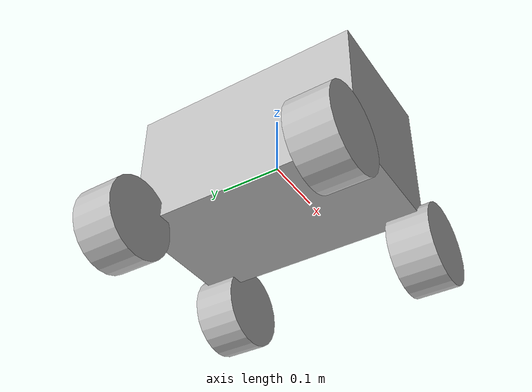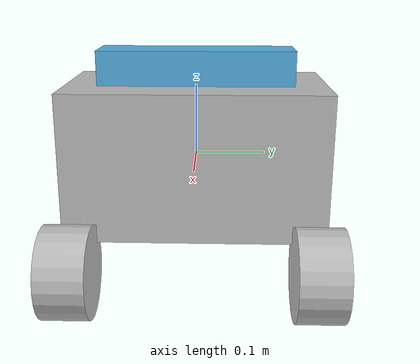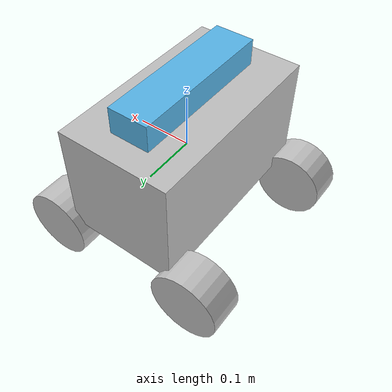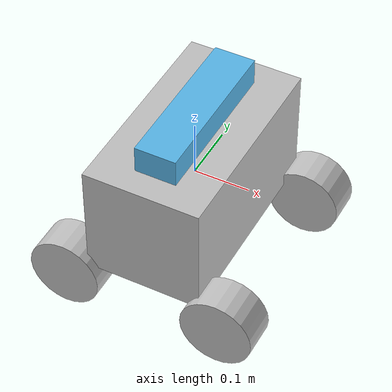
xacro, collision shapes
<?xml version="1.0" encoding="utf-8"?>
<robot xmlns:xacro="http://www.ros.org/wiki/xacro"
       name="leo_description">

  <xacro:arg name="robot_namespace" default=""/>

 <!-- Values Based on AMALIA Rover (Team ITALIA) -->
 <!-- Import others xacro proprieties -->
  <xacro:include filename="$(find leo_description)/urdf/materials.xacro" />
  <xacro:include filename="$(find leo_description)/urdf/simulation_parameters.xacro" />
  <xacro:include filename="$(find leo_description)/urdf/head.xacro" />

  <!-- Base_footprint = dummy link to avoid problems with Rviz because of Inerzia in the base link-->
  <link name="base_footprint"/>

  <joint name="base_joint" type="fixed">
    <parent link="base_footprint"/>
    <child link="base_link"/>
    <origin xyz="0.0 0.0 0.0" rpy="0 0 0"/>
  </joint>

  <link name="base_link">
    <visual>
      <origin xyz="0 0 0" rpy="0 0 0" />
      <geometry>
        <mesh filename="package://leo_description/meshes/base_link.STL"/>
      </geometry>
      <material name="base">
        <color rgba="0.752941176470588 0.752941176470588 0.752941176470588 1"/>
      </material>
    </visual>
    <collision>
      <origin xyz="0 0 0" rpy="0 0 0"/>
      <geometry>
        <box size="${body_length} ${body_width} ${body_height}"/>
      </geometry>
    </collision>
    <inertial>
      <mass value="${body_mass}"/>
      <inertia ixx="${body_mass*(body_width*body_width+body_height*body_height)/12}"
               ixy="0.0"
               ixz="0.0"
               iyy="${body_mass*(body_length*body_length+body_height*body_height)/12}"
               iyz="0.0"
               izz="${body_mass*(body_length*body_length+body_width*body_width)/12}" /> <!-- kg*m^4 -->
    </inertial>
  </link>

  <!--Wheels Xacro Macro-->
  <xacro:macro name="wheel_link" params="name model origin_x origin_y origin_z ">

  <joint name="wheel_${name}_joint" type="continuous">
    <origin xyz="${origin_x} ${origin_y} ${origin_z}" rpy="${pi/2} 0 0"/>
    <parent link="base_link"/>
    <child link="wheel_${name}_link"/>
    <axis xyz="0 0 -1"/>
  </joint>

    <link name="wheel_${name}_link">
      <visual>
        <origin xyz="0 0 0" rpy="0 0 0"/>
        <geometry>
          <mesh filename="package://leo_description/meshes/wheel_${model}.STL"/>
        </geometry>
        <material name="wheel">
          <color rgba="0.752941176470588 0.752941176470588 0.752941176470588 1"/>
        </material>
      </visual>
      <collision>
        <origin xyz="0 0 0" rpy="0 0 0"/>
        <geometry>
          <cylinder length="${wheel_width}" radius="${wheel_radius}"/>
        </geometry>
      </collision>
     <inertial>
      <mass value="${wheel_mass}" />                              <!-- kg -->
      <inertia ixx="${wheel_mass*(wheel_width*wheel_width+3*wheel_radius*wheel_radius)/12}"
               ixy="0.0"
               ixz="0.0"
               iyy="${wheel_mass*(wheel_width*wheel_width+3*wheel_radius*wheel_radius)/12}"
               iyz="0.0"
               izz="${wheel_mass*(wheel_radius*wheel_radius)/2}" /> <!-- kg*m^4 -->
    </inertial>
    </link>
  </xacro:macro>

  <xacro:wheel_link name="FL" model="left" origin_x="${origin_x}" origin_y="${origin_y}" origin_z="${-origin_z}" />
  <xacro:wheel_link name="FR" model="right" origin_x="${origin_x}" origin_y="${-origin_y}" origin_z="${-origin_z}"/>
  <xacro:wheel_link name="RL" model="left" origin_x="${-origin_x}" origin_y="${origin_y}" origin_z="${-origin_z}"/>
  <xacro:wheel_link name="RR" model="right" origin_x="${-origin_x}" origin_y="${-origin_y}" origin_z="${-origin_z}"/>

  <!--Camera Links-->

    <!-- Attach the head -->
    <leo_head parent="base_link" color="OffWhite">
      <origin xyz="${camera_link_x_origin} ${camera_link_y_origin} ${camera_link_z_origin}"/>
    </leo_head>
   <!-- linked to the base link -->

  <!--IMU Link-->

  <link name="imu_link"/>

  <joint name="imu_joint" type="fixed">
    <parent link="base_link"/>
    <child link="imu_link"/>
    <origin xyz="${imu_x_position} ${imu_y_position} ${imu_z_position}" rpy="0 0 0"/>
  </joint>

  <!--Scanner Link-->

     <!-- kg -->
      <!-- kg*m^4 -->

<!--Gazebo-->
  <gazebo>
    <plugin name="gazebo_ros_control" filename="libgazebo_ros_control.so">
      <legacyModeNS>true</legacyModeNS>
    </plugin>
  </gazebo>

<gazebo reference="base_link">
    <material>Gazebo/Red</material>
  </gazebo>

  <gazebo reference="camera_link">
    <material>Gazebo/Black</material>
  </gazebo>

   <gazebo reference="kinect_link">
    <sensor type="depth" name="openni_camera_camera">
      <always_on>1</always_on>
      <visualize>true</visualize>

      <camera>
        <horizontal_fov>${horizontal_fov}</horizontal_fov>
        <image>
          <width>${image_width}</width>
          <height>${image_height}</height>
          <format>${image_format}</format>
        </image>
        <depth_camera>

        </depth_camera>
        <clip>
          <near>${camera_clip_near}</near>
          <far>${camera_clip_far}</far>
        </clip>
      </camera>

      <plugin name="camera_plugin" filename="libgazebo_ros_openni_kinect.so">
        <alwaysOn>true</alwaysOn>
        <updateRate>${camera_update_rate}</updateRate>
        <cameraName>camera</cameraName>
        <frameName>kinect_depth_optical_frame</frameName>
        <imageTopicName>/camera/rgb/image_raw</imageTopicName>
        <cameraInfoTopicName>/camera/rgb/camera_info</cameraInfoTopicName>
        <depthImageTopicName>/camera/depth/image_raw</depthImageTopicName>
        <depthImageCameraInfoTopicName>/camera/depth/camera_info</depthImageCameraInfoTopicName>
        <pointCloudTopicName>/camera/depth/points</pointCloudTopicName>
        <pointCloudCutoff>${point_cloud_cut_off}</pointCloudCutoff>
        <hackBaseline>${hack_baseline}</hackBaseline>
        <distortionK1>0.0</distortionK1>
        <distortionK2>0.0</distortionK2>
        <distortionK3>0.0</distortionK3>
        <distortionT1>0.0</distortionT1>
        <distortionT2>0.0</distortionT2>
        <CxPrime>0.0</CxPrime>
        <Cx>0.0</Cx>
        <Cy>0.0</Cy>
        <focalLength>0.0</focalLength>
      </plugin>
    </sensor>
  </gazebo>

 <gazebo reference="imu_link">
   <gravity>true</gravity>
    <sensor name="imu_sensor" type="imu">
      <always_on>true</always_on>
      <update_rate>50</update_rate>
      <visualize>true</visualize>
      <topic>imu/data</topic>
      <plugin filename="libgazebo_ros_imu_sensor.so" name="imu_plugin">
        <topicName>imu/data</topicName>
        <bodyName>imu_link</bodyName>
        <updateRateHZ>10.0</updateRateHZ>
        <gaussianNoise>0.0</gaussianNoise>
        <xyzOffset>0 0 0</xyzOffset>
        <rpyOffset>0 0 0</rpyOffset>
        <frameName>imu_link</frameName>
      </plugin>
      <pose>0 0 0 0 0 0</pose>
    </sensor>
  </gazebo>

  <gazebo>
    <plugin name="skid_steer_drive_controller" filename="libgazebo_ros_skid_steer_drive.so">
      <updateRate>50</updateRate>
      <odometryTopic>odom</odometryTopic>
      <odometryFrame>odom</odometryFrame>
      <odometrySource>world</odometrySource>
      <publishOdomTF>true</publishOdomTF>
      <robotBaseFrame>base_footprint</robotBaseFrame>
      <publishWheelTF>true</publishWheelTF>
      <publishTf>true</publishTf>
      <publishWheelJointState>true</publishWheelJointState>
      <wheelSeparation>0.182</wheelSeparation>
      <wheelDiameter>0.064905</wheelDiameter>
      <torque>10</torque>
      <leftFrontJoint>wheel_FL_joint</leftFrontJoint>
      <rightFrontJoint>wheel_FR_joint</rightFrontJoint>
      <leftRearJoint>wheel_RL_joint</leftRearJoint>
      <rightRearJoint>wheel_RR_joint</rightRearJoint>
      <topicName>cmd_vel</topicName>
      <commandTopic>cmd_vel</commandTopic>
      <broadcastTF>true</broadcastTF>
      <covariance_x>0.000100</covariance_x>
      <covariance_y>0.000100</covariance_y>
      <covariance_yaw>0.010000</covariance_yaw>
    </plugin>
  </gazebo>

<!--Gazebo Transmissions in head actuators-->

  <transmission name="trasmission_head_pan_link">
    <type>transmission_interface/SimpleTransmission</type>
    <joint name="head_pan_joint">
      <hardwareInterface>hardware_interface/EffortJointInterface</hardwareInterface>
    </joint>
    <actuator name="motor_head_pan_link">
      <hardwareInterface>hardware_interface/EffortJointInterface</hardwareInterface>
      <mechanicalReduction>1</mechanicalReduction>
    </actuator>
  </transmission>

  <transmission name="trasmission_head_tilt_link">
    <type>transmission_interface/SimpleTransmission</type>
    <joint name="head_tilt_joint">
      <hardwareInterface>hardware_interface/EffortJointInterface</hardwareInterface>
    </joint>
    <actuator name="motor_head_tilt_link">
      <hardwareInterface>hardware_interface/EffortJointInterface</hardwareInterface>
      <mechanicalReduction>1</mechanicalReduction>
    </actuator>
  </transmission>

<!--Gazebo Transmissions in Wheels-->

  <gazebo reference="wheel_FL_link">
    <mu1>1</mu1>
    <mu2>1</mu2>
    <kp>10000000.0</kp>
    <kd>1.0</kd>
    <fdir1>1 0 0</fdir1>
    <material>Gazebo/Black</material>
  </gazebo>

  <gazebo reference="wheel_FR_link">
    <mu1>1</mu1>
    <mu2>1</mu2>
    <kp>10000000.0</kp>
    <kd>1.0</kd>
    <fdir1>1 0 0</fdir1>
    <material>Gazebo/Black</material>
  </gazebo>

  <gazebo reference="wheel_RL_link">
    <mu1>1</mu1>
    <mu2>1</mu2>
    <kp>10000000.0</kp>
    <kd>1.0</kd>
    <fdir1>1 0 0</fdir1>
    <material>Gazebo/Black</material>
  </gazebo>

  <gazebo reference="wheel_RR_link">
    <mu1>1</mu1>
    <mu2>1</mu2>
    <kp>10000000.0</kp>
    <kd>1.0</kd>
    <fdir1>1 0 0</fdir1>
    <material>Gazebo/Black</material>
  </gazebo>

<transmission name="trasmission_wheel_FL_link" type="SimpleTransmission">
  <type>transmission_interface/SimpleTransmission</type>
	<actuator name="FL_wheel_motor">
		<mechanicalReduction>1</mechanicalReduction>
	</actuator>
        <joint name="wheel_FL_joint">
	        <hardwareInterface>hardware_interface/VelocityJointInterface</hardwareInterface>
	</joint>
</transmission>

<transmission name="trasmission_wheel_FR_link" type="SimpleTransmission">
  <type>transmission_interface/SimpleTransmission</type>
	<actuator name="FL_wheel_motor">
		<mechanicalReduction>1</mechanicalReduction>
	</actuator>
        <joint name="wheel_FR_joint">
	        <hardwareInterface>hardware_interface/VelocityJointInterface</hardwareInterface>
	</joint>
</transmission>

<transmission name="trasmission_wheel_RL_link" type="SimpleTransmission">
  <type>transmission_interface/SimpleTransmission</type>
	<actuator name="FL_wheel_motor">
		<mechanicalReduction>1</mechanicalReduction>
	</actuator>
        <joint name="wheel_RL_joint">
	        <hardwareInterface>hardware_interface/VelocityJointInterface</hardwareInterface>
	</joint>
</transmission>

<transmission name="trasmission_wheel_RR_link" type="SimpleTransmission">
  <type>transmission_interface/SimpleTransmission</type>
	<actuator name="FL_wheel_motor">
		<mechanicalReduction>1</mechanicalReduction>
	</actuator>
        <joint name="wheel_RR_joint">
	        <hardwareInterface>hardware_interface/VelocityJointInterface</hardwareInterface>
	</joint>
</transmission>

</robot>

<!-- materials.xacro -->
<!-- Material Color by xacro file-->
<robot>

  <material name="OffWhite">
    <color rgba="0.8 0.8 0.8 0.9"/>
  </material>

  <material name="black">
    <color rgba="0.0 0.0 0.0 1.0"/>
  </material>

  <material name="blue">
    <color rgba="0.0 0.0 0.8 1.0"/>
  </material>

  <material name="green">
    <color rgba="0.0 0.8 0.0 1.0"/>
  </material>

  <material name="gray">
    <color rgba="0.7 0.7 0.7 1.0"/>
  </material>

  <material name="darkgray">
    <color rgba="0.3 0.3 0.3 1.0"/>
  </material>

  <material name="red">
    <color rgba="0.8 0.0 0.0 1.0"/>
  </material>

  <material name="white">
    <color rgba="1.0 1.0 1.0 1.0"/>
  </material>

  <material name="yellow">
    <color rgba="0.8 0.8 0.0 1.0"/>
  </material>

</robot>

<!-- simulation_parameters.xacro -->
<robot xmlns:xacro="http://www.ros.org/wiki/xacro"
       name="parameter_file">

<!-- Simulation Parameters-->

  <xacro:property name="M_PI" value="3.14159"/>
  <xacro:property name="M_SCALE" value="0.001"/>
  <xacro:property name="F10_HEIGHT" value="0.004"/>
  <xacro:property name="F4_HEIGHT" value="0.0525"/>
  <xacro:property name="F3_HEIGHT" value="0.009"/>
  <xacro:property name="AX12_HEIGHT" value="0.0385"/>
  <xacro:property name="AX12_WIDTH" value="0.038"/>
  <xacro:property name="F2_HEIGHT" value="0.0265"/>
  <xacro:property name="MESH_EXT" value="dae"/>
  <xacro:property name="MESH_SCALE" value="0.001"/>

  <!-- Wheel Mounting Positions -->
  <xacro:property name="wheelbase" value="${0.14211*2}" />
  <xacro:property name="wheel_vertical_offset" value="${0.13136*2}" />
  <xacro:property name="track" value="${0.16833*2}" />
  <xacro:property name="wheel_radius" value="0.064905" />
  <xacro:property name="wheel_width" value="0.06634" />
  <xacro:property name="origin_x" value="0.14211" />
  <xacro:property name="origin_y" value="0.16833" />
  <xacro:property name="origin_z" value="0.13136" />

   <!-- LEO Body Dimensions [blender units] (z,y,x)-->
  <xacro:property name="body_height" value="0.20733" />
  <xacro:property name="body_width" value="0.36934" />
  <xacro:property name="body_length" value="0.20733" />

  <!-- LEO Body Dimensions [blender units] (z,y,x)-->
  <xacro:property name="body_mass" value="26" />   <!-- kg -->
  <xacro:property name="wheel_mass" value="1.4" />   <!-- kg -->

  <!-- Lidar mass and dimensions-->
  <xacro:property name="lidar_mass" value="0.190" />   <!-- kg -->
  <xacro:property name="lidar_width" value="0.020" />
  <xacro:property name="lidar_radius" value="0.035" />
  <xacro:property name="lidar_x_position" value="0.08" />
  <xacro:property name="lidar_y_position" value="0.00" />
  <xacro:property name="lidar_z_position" value="0.00" />

  <!-- Depth Camera Position, mass and dimensions-->
  <xacro:property name="camera_link_x_origin" value="0.015" />
  <xacro:property name="camera_link_y_origin" value="0.0" />
  <xacro:property name="camera_link_z_origin" value="0.0" />
  <!-- Gazebo plugins parameters-->
  <xacro:property name="horizontal_fov" value="1.047" />   <!-- rad -->
  <xacro:property name="image_format" value="R8G8B8" />
  <xacro:property name="image_width" value="640" />
  <xacro:property name="image_height" value="480" />
  <xacro:property name="camera_clip_near" value="0.1" />
  <xacro:property name="camera_clip_far" value="100" />
  <xacro:property name="camera_update_rate" value="50" />   <!-- m // WARNING: THIS VALUE MUST BE THE SAME OF THE ONES CALLED IN THE LAUNCH FILES-->
  <xacro:property name="point_cloud_cut_off" value="0.4" />
  <xacro:property name="hack_baseline" value="0.07" />

  <!-- Imu Position, mass and dimensions-->
  <xacro:property name="imu_x_position" value="0.00" />
  <xacro:property name="imu_y_position" value="0.00" />
  <xacro:property name="imu_z_position" value="0.00" />

</robot>

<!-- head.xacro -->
<robot xmlns:xacro="http://www.ros.org/wiki/xacro"
       name="head_description">

  <xacro:include filename="$(find leo_description)/urdf/head_hardware.xacro" />

  <xacro:macro name="leo_head" params="parent color *origin">
   <!-- linked to the base link -->
    <link name="head_base_link" />
    <joint name="head_base_joint" type="fixed">
      <insert_block name="origin" />
      <parent link="${parent}"/>
      <child link="head_base_link" />
    </joint>

    <!-- fake head_pan_link joint -->
    <link name="head_pan_link">
      <inertial>
        <mass value="0.0001" />
        <origin xyz="0 0 0" />
        <inertia ixx="1.0" ixy="0.0" ixz="0.0"
          iyy="1.0" iyz="0.0"
          izz="1.0" />
      </inertial>

      <visual>
        <origin xyz=" 0 0 0 " rpy="0 0 0" />
        <geometry>
          <mesh filename="package://leo_description/meshes/ax12_box.${MESH_EXT}" scale="${M_SCALE} ${M_SCALE} ${M_SCALE}"/>
        </geometry>
        <material name="${color}"/>
      </visual>

      <collision>
        <origin xyz="0.0 0.0 0" rpy="0 0 0" />
        <geometry>
          <box size="0.025 0.038 0.009"/>
        </geometry>
      </collision>
    </link>

    <joint name="head_pan_joint" type="revolute">
      <origin xyz="0 0 0" rpy="0 ${M_PI} 0" />
      <parent link="${parent}"/>
      <axis xyz="0 0 -1"/>
      <limit effort="10" velocity="0.5" lower="${-60*M_PI/180}" upper="${60*M_PI/180}" />
      <child link="head_pan_link" />
    </joint>

     <!-- fake head_tilt_link joint -->
    <link name="head_tilt_link">
      <inertial>
        <mass value="0.00001" />
        <origin xyz="0 0 0" />
        <inertia ixx="1.0" ixy="0.0" ixz="0.0"
          iyy="1.0" iyz="0.0"
          izz="1.0" />
      </inertial>

      <visual>
        <origin xyz=" 0 0 0" rpy="0 0 0" />
        <geometry>
          <mesh filename="package://leo_description/meshes/ax12_box.${MESH_EXT}" scale="${M_SCALE} ${M_SCALE} ${M_SCALE}"/>
        </geometry>
        <material name="${color}"/>
      </visual>

      <collision>
        <origin xyz="0.0 0.0 0" rpy="0 0 0" />
        <geometry>
          <box size="0.028 0.0485 0.065"/>
        </geometry>
      </collision>
    </link>

    <joint name="head_tilt_joint" type="revolute">
      <origin xyz="0 0 ${-0.038-0.001} " rpy="0 0 0" />
      <parent link="head_pan_link"/>
      <axis xyz="0 -1 0"/>
      <limit effort="10" velocity="0.5" lower="${-20*M_PI/180}" upper="0" />
      <child link="head_tilt_link" />
    </joint>

	<!-- head base plate (needed for collision awareness) -->
	<!--arm_head_base_plate parent="base_link" number="1" x_loc="-0.027" y_loc="-0.0175" z_loc="0.075" color="${color}"/-->

    <!-- head pan joint: Joint of the mast -->

    <!--head tilt joint: Joint of the head -->

    <joint name="base_kinect_joint" type="fixed">
      <origin xyz="-0.03 0 ${-2*0.038-0.001} " rpy="0 ${M_PI} 0" />
      <parent link="head_tilt_link" />
      <child link="kinect_link" />
    </joint>

    <link name="kinect_link">
      <inertial>
        <mass value="0.000001" />
        <origin xyz="0 0 0 " />
        <inertia ixx="0.010" ixy="0.0" ixz="0.0"
          iyy="0.010" iyz="0.0"
          izz="0.010" />
      </inertial>

      <visual>
        <origin xyz="0 0 0 " rpy="0 0 0" />
        <geometry>
          <mesh filename="package://leo_description/meshes/kinect.dae" scale="${MESH_SCALE} ${MESH_SCALE} ${MESH_SCALE}"/>
        </geometry>
      </visual>

      <collision>
        <origin xyz="-0.0275 0.0 0.0" rpy="0 0 0" />
        <geometry>
          <box size="0.0730 .2760 0.0720"/>
        </geometry>
      </collision>
    </link>

  <joint name="kinect_depth_joint" type="fixed">
    <origin xyz="0 0.018 0" rpy="0 0 0" />
    <parent link="kinect_link" />
    <child link="kinect_depth_frame" />
  </joint>

  <link name="kinect_depth_frame">
    <inertial>
      <mass value="0.0000001" />
      <origin xyz="0 0 0" />
      <inertia ixx="0.0001" ixy="0.0" ixz="0.0"
        iyy="0.0001" iyz="0.0"
        izz="0.0001" />
    </inertial>
  </link>

  <joint name="kinect_depth_optical_joint" type="fixed">
    <origin xyz="0 0 0" rpy="${-M_PI/2} 0 ${-M_PI/2}" />
    <parent link="kinect_depth_frame" />
    <child link="kinect_depth_optical_frame" />
  </joint>

  <link name="kinect_depth_optical_frame">
    <inertial>
      <mass value="0.0000001" />
      <origin xyz="0 0 0" />
      <inertia ixx="0.0001" ixy="0.0" ixz="0.0"
        iyy="0.0001" iyz="0.0"
        izz="0.0001" />
    </inertial>
  </link>

  <joint name="kinect_rgb_joint" type="fixed">
    <origin xyz="0 -0.005 0" rpy="0 0 0" />
    <parent link="kinect_link" />
    <child link="kinect_rgb_frame" />
  </joint>

  <link name="kinect_rgb_frame">
    <inertial>
      <mass value="0.0000001" />
      <origin xyz="0 0 0" />
      <inertia ixx="0.0001" ixy="0.0" ixz="0.0"
        iyy="0.0001" iyz="0.0"
        izz="0.0001" />
    </inertial>
  </link>

  <joint name="kinect_rgb_optical_joint" type="fixed">
    <origin xyz="0 0 0" rpy="${-M_PI/2} 0 ${-M_PI/2}" />
    <parent link="kinect_rgb_frame" />
    <child link="kinect_rgb_optical_frame" />
  </joint>

  <link name="kinect_rgb_optical_frame">
    <inertial>
      <mass value="0.0000001" />
      <origin xyz="0 0 0" />
      <inertia ixx="0.0001" ixy="0.0" ixz="0.0"
        iyy="0.0001" iyz="0.0"
        izz="0.0001" />
    </inertial>
  </link>

  <link name="left_eye_link">
    <visual>
      <origin xyz="0 0 0" rpy="0 1.57 0" />
	  <geometry>
	     <cylinder length="0.01" radius="0.01" />
	  </geometry>
	  <material name="OffWhite" />
	</visual>
    <collision>
	  <origin xyz="0 0 0" rpy="0 1.57 0" />
	  <geometry>
        <cylinder length="0.01" radius="0.01" />
      </geometry>
    </collision>
    <inertial>
       <mass value="0.000001" />
       <origin xyz="0 0 0" />
       <inertia ixx="0.0001" ixy="0.0" ixz="0.0"
         iyy="0.0001" iyz="0.0"
         izz="0.0001" />
     </inertial>
  </link>

  <link name="right_eye_link">
    <visual>
      <origin xyz="0 0 0" rpy="0 1.57 0" />
	  <geometry>
	     <cylinder length="0.01" radius="0.01" />
	  </geometry>
	  <material name="OffWhite" />
	</visual>
    <collision>
	  <origin xyz="0 0 0" rpy="0 1.57 0" />
	  <geometry>
        <cylinder length="0.01" radius="0.01" />
      </geometry>
    </collision>
    <inertial>
       <mass value="0.000001" />
       <origin xyz="0 0 0" />
       <inertia ixx="0.0001" ixy="0.0" ixz="0.0"
         iyy="0.0001" iyz="0.0"
         izz="0.0001" />
     </inertial>
  </link>

  <joint name="left_eye_joint" type="fixed">
    <parent link="kinect_link" />
    <child link="left_eye_link" />
    <origin xyz="-0.005 0.035 0" rpy="0 0 0" />
  </joint>

  <joint name="right_eye_joint" type="fixed">
    <parent link="kinect_link" />
    <child link="right_eye_link" />
    <origin xyz="-0.005 -0.035 0" rpy="0 0 0" />
  </joint>

 </xacro:macro>

</robot>
